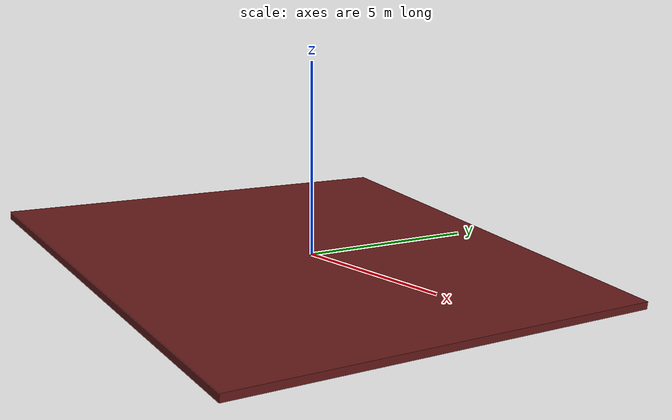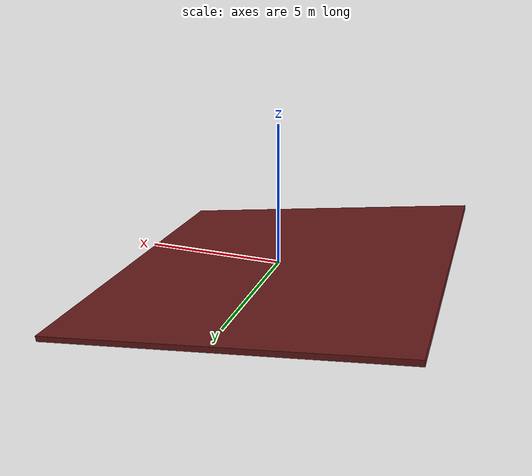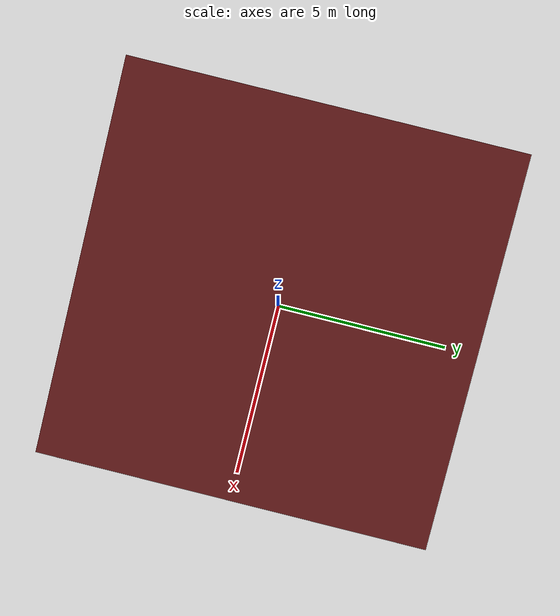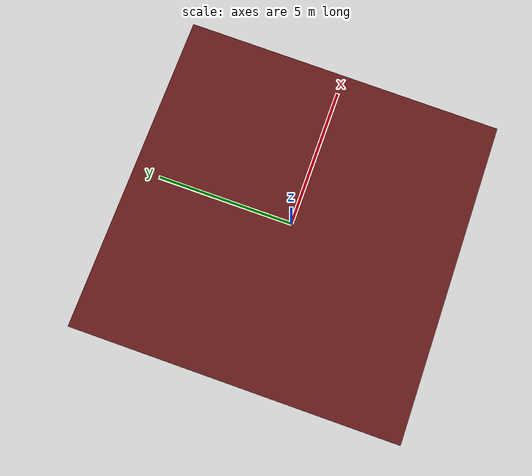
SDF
<sdf version="1.9"><model name="afvl_test_surface"><static>true</static><pose>0 0 -0.1 0 0.13962634015954636 0</pose><link name="pad"><collision name="collision"><geometry><box><size>12 12 0.2</size></box></geometry></collision><visual name="visual"><geometry><box><size>12 12 0.2</size></box></geometry><material><ambient>0.4 0.1 0.1 1</ambient></material></visual></link></model></sdf>
